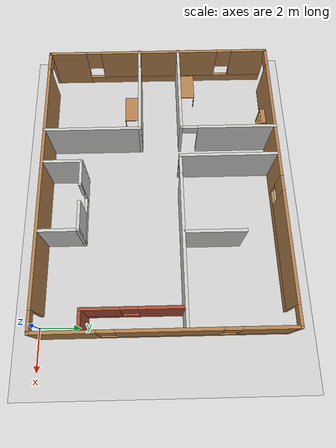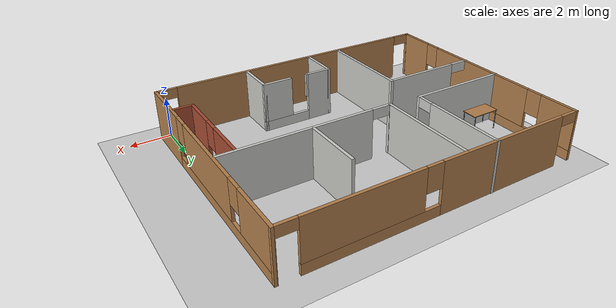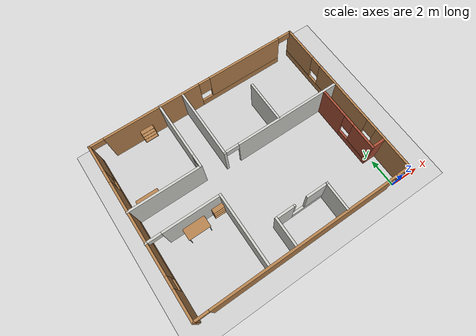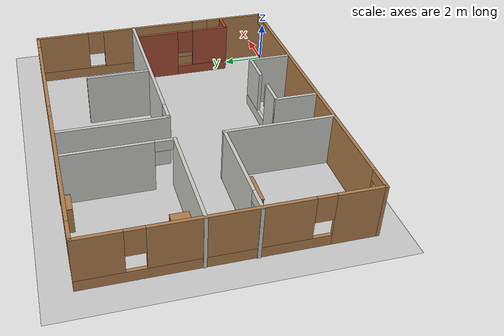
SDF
<sdf version="1.7">
 <world name="office.world">
  <model name="ground_plane">
   <static>1</static>
   <link name="link">
    <collision name="collision">
     <geometry><plane><normal>0 0 1</normal><size>100 100</size></plane></geometry>
     <surface><friction><ode><mu>100</mu><mu2>50</mu2></ode></friction></surface>
    </collision>
    <visual name="visual">
     <cast_shadows>0</cast_shadows>
     <geometry><plane><normal>0 0 1</normal><size>100 100</size></plane></geometry>
     <material>
      <script><uri>file://media/materials/scripts/gazebo.material</uri><name>Gazebo/Grey</name></script>
     </material>
    </visual>
   </link>
  </model>
  <model name="office">
   <pose>-6.85115 6.02821 0 0 -0 0</pose>
   <link name="Wall_18">
    <pose>-0.157794 -5.93469 0 0 -0 0</pose>
    <visual name="Wall_18_Visual_0">
     <pose>-7.42046 0 1.25 0 -0 0</pose>
     <geometry><box><size>0.159078 0.15 2.5</size></box></geometry>
     <material>
      <script><uri>file://media/materials/scripts/gazebo.material</uri><name>Gazebo/Wood</name></script>
      <ambient>1 1 1 1</ambient>
     </material>
     <meta><layer>0</layer></meta>
    </visual>
    <collision name="Wall_18_Collision_0">
     <geometry><box><size>0.159078 0.15 2.5</size></box></geometry>
     <pose>-7.42046 0 1.25 0 -0 0</pose>
    </collision>
    <visual name="Wall_18_Visual_1">
     <pose>0.007174 0 1.25 0 -0 0</pose>
     <geometry><box><size>12.8962 0.15 2.5</size></box></geometry>
     <material>
      <script><uri>file://media/materials/scripts/gazebo.material</uri><name>Gazebo/Wood</name></script>
      <ambient>1 1 1 1</ambient>
     </material>
     <meta><layer>0</layer></meta>
    </visual>
    <collision name="Wall_18_Collision_1">
     <geometry><box><size>12.8962 0.15 2.5</size></box></geometry>
     <pose>0.007174 0 1.25 0 -0 0</pose>
    </collision>
    <visual name="Wall_18_Visual_2">
     <pose>7.42764 0 1.25 0 -0 0</pose>
     <geometry><box><size>0.144729 0.15 2.5</size></box></geometry>
     <material>
      <script><uri>file://media/materials/scripts/gazebo.material</uri><name>Gazebo/Wood</name></script>
      <ambient>1 1 1 1</ambient>
     </material>
     <meta><layer>0</layer></meta>
    </visual>
    <collision name="Wall_18_Collision_2">
     <geometry><box><size>0.144729 0.15 2.5</size></box></geometry>
     <pose>7.42764 0 1.25 0 -0 0</pose>
    </collision>
    <visual name="Wall_18_Visual_3">
     <pose>-6.89092 0 2.25 0 -0 0</pose>
     <geometry><box><size>0.9 0.15 0.5</size></box></geometry>
     <material>
      <script><uri>file://media/materials/scripts/gazebo.material</uri><name>Gazebo/Wood</name></script>
      <ambient>1 1 1 1</ambient>
     </material>
     <meta><layer>0</layer></meta>
    </visual>
    <collision name="Wall_18_Collision_3">
     <geometry><box><size>0.9 0.15 0.5</size></box></geometry>
     <pose>-6.89092 0 2.25 0 -0 0</pose>
    </collision>
    <visual name="Wall_18_Visual_4">
     <pose>6.90527 0 2.25 0 -0 0</pose>
     <geometry><box><size>0.9 0.15 0.5</size></box></geometry>
     <material>
      <script><uri>file://media/materials/scripts/gazebo.material</uri><name>Gazebo/Wood</name></script>
      <ambient>1 1 1 1</ambient>
     </material>
     <meta><layer>0</layer></meta>
    </visual>
    <collision name="Wall_18_Collision_4">
     <geometry><box><size>0.9 0.15 0.5</size></box></geometry>
     <pose>6.90527 0 2.25 0 -0 0</pose>
    </collision>
   </link>
   <link name="Wall_20">
    <pose>7.26721 -0.009693 0 0 -0 1.5708</pose>
    <visual name="Wall_20_Visual_0">
     <pose>-4.48837 0 1.25 0 -0 0</pose>
     <geometry><box><size>3.02326 0.15 2.5</size></box></geometry>
     <material>
      <script><uri>file://media/materials/scripts/gazebo.material</uri><name>Gazebo/Wood</name></script>
      <ambient>1 1 1 1</ambient>
     </material>
     <meta><layer>0</layer></meta>
    </visual>
    <collision name="Wall_20_Collision_0">
     <geometry><box><size>3.02326 0.15 2.5</size></box></geometry>
     <pose>-4.48837 0 1.25 0 -0 0</pose>
    </collision>
    <visual name="Wall_20_Visual_1">
     <pose>1.51163 0 0.25 0 -0 0</pose>
     <geometry><box><size>8.97674 0.15 0.5</size></box></geometry>
     <material>
      <script><uri>file://media/materials/scripts/gazebo.material</uri><name>Gazebo/Wood</name></script>
      <ambient>1 1 1 1</ambient>
     </material>
     <meta><layer>0</layer></meta>
    </visual>
    <collision name="Wall_20_Collision_1">
     <geometry><box><size>8.97674 0.15 0.5</size></box></geometry>
     <pose>1.51163 0 0.25 0 -0 0</pose>
    </collision>
    <visual name="Wall_20_Visual_2">
     <pose>0.202385 0 1.5 0 -0 0</pose>
     <geometry><box><size>4.75824 0.15 2</size></box></geometry>
     <material>
      <script><uri>file://media/materials/scripts/gazebo.material</uri><name>Gazebo/Wood</name></script>
      <ambient>1 1 1 1</ambient>
     </material>
     <meta><layer>0</layer></meta>
    </visual>
    <collision name="Wall_20_Collision_2">
     <geometry><box><size>4.75824 0.15 2</size></box></geometry>
     <pose>0.202385 0 1.5 0 -0 0</pose>
    </collision>
    <visual name="Wall_20_Visual_3">
     <pose>4.69075 0 1.5 0 -0 0</pose>
     <geometry><box><size>2.61849 0.15 2</size></box></geometry>
     <material>
      <script><uri>file://media/materials/scripts/gazebo.material</uri><name>Gazebo/Wood</name></script>
      <ambient>1 1 1 1</ambient>
     </material>
     <meta><layer>0</layer></meta>
    </visual>
    <collision name="Wall_20_Collision_3">
     <geometry><box><size>2.61849 0.15 2</size></box></geometry>
     <pose>4.69075 0 1.5 0 -0 0</pose>
    </collision>
    <visual name="Wall_20_Visual_4">
     <pose>-2.57674 0 1.9 0 -0 0</pose>
     <geometry><box><size>0.8 0.15 1.2</size></box></geometry>
     <material>
      <script><uri>file://media/materials/scripts/gazebo.material</uri><name>Gazebo/Wood</name></script>
      <ambient>1 1 1 1</ambient>
     </material>
     <meta><layer>0</layer></meta>
    </visual>
    <collision name="Wall_20_Collision_4">
     <geometry><box><size>0.8 0.15 1.2</size></box></geometry>
     <pose>-2.57674 0 1.9 0 -0 0</pose>
    </collision>
    <visual name="Wall_20_Visual_5">
     <pose>2.98151 0 1.9 0 -0 0</pose>
     <geometry><box><size>0.8 0.15 1.2</size></box></geometry>
     <material>
      <script><uri>file://media/materials/scripts/gazebo.material</uri><name>Gazebo/Wood</name></script>
      <ambient>1 1 1 1</ambient>
     </material>
     <meta><layer>0</layer></meta>
    </visual>
    <collision name="Wall_20_Collision_5">
     <geometry><box><size>0.8 0.15 1.2</size></box></geometry>
     <pose>2.98151 0 1.9 0 -0 0</pose>
    </collision>
   </link>
   <link name="Wall_22">
    <pose>-7.58279 -0.009693 0 0 -0 1.5708</pose>
    <visual name="Wall_22_Visual_0">
     <pose>-4.97539 0 1.25 0 -0 0</pose>
     <geometry><box><size>2.04922 0.15 2.5</size></box></geometry>
     <material>
      <script><uri>file://media/materials/scripts/gazebo.material</uri><name>Gazebo/Wood</name></script>
      <ambient>1 1 1 1</ambient>
     </material>
     <meta><layer>0</layer></meta>
    </visual>
    <collision name="Wall_22_Collision_0">
     <geometry><box><size>2.04922 0.15 2.5</size></box></geometry>
     <pose>-4.97539 0 1.25 0 -0 0</pose>
    </collision>
    <visual name="Wall_22_Visual_1">
     <pose>1.02461 0 0.25 0 -0 0</pose>
     <geometry><box><size>9.95078 0.15 0.5</size></box></geometry>
     <material>
      <script><uri>file://media/materials/scripts/gazebo.material</uri><name>Gazebo/Wood</name></script>
      <ambient>1 1 1 1</ambient>
     </material>
     <meta><layer>0</layer></meta>
    </visual>
    <collision name="Wall_22_Collision_1">
     <geometry><box><size>9.95078 0.15 0.5</size></box></geometry>
     <pose>1.02461 0 0.25 0 -0 0</pose>
    </collision>
    <visual name="Wall_22_Visual_2">
     <pose>0.053552 0 1.5 0 -0 0</pose>
     <geometry><box><size>6.40865 0.15 2</size></box></geometry>
     <material>
      <script><uri>file://media/materials/scripts/gazebo.material</uri><name>Gazebo/Wood</name></script>
      <ambient>1 1 1 1</ambient>
     </material>
     <meta><layer>0</layer></meta>
    </visual>
    <collision name="Wall_22_Collision_2">
     <geometry><box><size>6.40865 0.15 2</size></box></geometry>
     <pose>0.053552 0 1.5 0 -0 0</pose>
    </collision>
    <visual name="Wall_22_Visual_3">
     <pose>5.02894 0 1.5 0 -0 0</pose>
     <geometry><box><size>1.94212 0.15 2</size></box></geometry>
     <material>
      <script><uri>file://media/materials/scripts/gazebo.material</uri><name>Gazebo/Wood</name></script>
      <ambient>1 1 1 1</ambient>
     </material>
     <meta><layer>0</layer></meta>
    </visual>
    <collision name="Wall_22_Collision_3">
     <geometry><box><size>1.94212 0.15 2</size></box></geometry>
     <pose>5.02894 0 1.5 0 -0 0</pose>
    </collision>
    <visual name="Wall_22_Visual_4">
     <pose>-3.55077 0 1.9 0 -0 0</pose>
     <geometry><box><size>0.8 0.15 1.2</size></box></geometry>
     <material>
      <script><uri>file://media/materials/scripts/gazebo.material</uri><name>Gazebo/Wood</name></script>
      <ambient>1 1 1 1</ambient>
     </material>
     <meta><layer>0</layer></meta>
    </visual>
    <collision name="Wall_22_Collision_4">
     <geometry><box><size>0.8 0.15 1.2</size></box></geometry>
     <pose>-3.55077 0 1.9 0 -0 0</pose>
    </collision>
    <visual name="Wall_22_Visual_5">
     <pose>3.65788 0 1.9 0 -0 0</pose>
     <geometry><box><size>0.8 0.15 1.2</size></box></geometry>
     <material>
      <script><uri>file://media/materials/scripts/gazebo.material</uri><name>Gazebo/Wood</name></script>
      <ambient>1 1 1 1</ambient>
     </material>
     <meta><layer>0</layer></meta>
    </visual>
    <collision name="Wall_22_Collision_5">
     <geometry><box><size>0.8 0.15 1.2</size></box></geometry>
     <pose>3.65788 0 1.9 0 -0 0</pose>
    </collision>
   </link>
   <link name="Wall_24">
    <pose>-0.157794 5.91531 0 0 -0 0</pose>
    <visual name="Wall_24_Visual_0">
     <pose>-7.43614 0 1.25 0 -0 0</pose>
     <geometry><box><size>0.127718 0.15 2.5</size></box></geometry>
     <material>
      <script><uri>file://media/materials/scripts/gazebo.material</uri><name>Gazebo/Wood</name></script>
      <ambient>1 1 1 1</ambient>
     </material>
     <meta><layer>0</layer></meta>
    </visual>
    <collision name="Wall_24_Collision_0">
     <geometry><box><size>0.127718 0.15 2.5</size></box></geometry>
     <pose>-7.43614 0 1.25 0 -0 0</pose>
    </collision>
    <visual name="Wall_24_Visual_1">
     <pose>-3.12232 0 1.25 0 -0 0</pose>
     <geometry><box><size>6.69992 0.15 2.5</size></box></geometry>
     <material>
      <script><uri>file://media/materials/scripts/gazebo.material</uri><name>Gazebo/Wood</name></script>
      <ambient>1 1 1 1</ambient>
     </material>
     <meta><layer>0</layer></meta>
    </visual>
    <collision name="Wall_24_Collision_1">
     <geometry><box><size>6.69992 0.15 2.5</size></box></geometry>
     <pose>-3.12232 0 1.25 0 -0 0</pose>
    </collision>
    <visual name="Wall_24_Visual_2">
     <pose>7.43563 0 1.25 0 -0 0</pose>
     <geometry><box><size>0.128742 0.15 2.5</size></box></geometry>
     <material>
      <script><uri>file://media/materials/scripts/gazebo.material</uri><name>Gazebo/Wood</name></script>
      <ambient>1 1 1 1</ambient>
     </material>
     <meta><layer>0</layer></meta>
    </visual>
    <collision name="Wall_24_Collision_2">
     <geometry><box><size>0.128742 0.15 2.5</size></box></geometry>
     <pose>7.43563 0 1.25 0 -0 0</pose>
    </collision>
    <visual name="Wall_24_Visual_3">
     <pose>3.34945 0 0.25 0 -0 0</pose>
     <geometry><box><size>6.24362 0.15 0.5</size></box></geometry>
     <material>
      <script><uri>file://media/materials/scripts/gazebo.material</uri><name>Gazebo/Wood</name></script>
      <ambient>1 1 1 1</ambient>
     </material>
     <meta><layer>0</layer></meta>
    </visual>
    <collision name="Wall_24_Collision_3">
     <geometry><box><size>6.24362 0.15 0.5</size></box></geometry>
     <pose>3.34945 0 0.25 0 -0 0</pose>
    </collision>
    <visual name="Wall_24_Visual_4">
     <pose>3.74945 0 1.5 0 -0 0</pose>
     <geometry><box><size>5.44362 0.15 2</size></box></geometry>
     <material>
      <script><uri>file://media/materials/scripts/gazebo.material</uri><name>Gazebo/Wood</name></script>
      <ambient>1 1 1 1</ambient>
     </material>
     <meta><layer>0</layer></meta>
    </visual>
    <collision name="Wall_24_Collision_4">
     <geometry><box><size>5.44362 0.15 2</size></box></geometry>
     <pose>3.74945 0 1.5 0 -0 0</pose>
    </collision>
    <visual name="Wall_24_Visual_5">
     <pose>0.62764 0 1.9 0 -0 0</pose>
     <geometry><box><size>0.8 0.15 1.2</size></box></geometry>
     <material>
      <script><uri>file://media/materials/scripts/gazebo.material</uri><name>Gazebo/Wood</name></script>
      <ambient>1 1 1 1</ambient>
     </material>
     <meta><layer>0</layer></meta>
    </visual>
    <collision name="Wall_24_Collision_5">
     <geometry><box><size>0.8 0.15 1.2</size></box></geometry>
     <pose>0.62764 0 1.9 0 -0 0</pose>
    </collision>
    <visual name="Wall_24_Visual_6">
     <pose>-6.92228 0 2.25 0 -0 0</pose>
     <geometry><box><size>0.9 0.15 0.5</size></box></geometry>
     <material>
      <script><uri>file://media/materials/scripts/gazebo.material</uri><name>Gazebo/Wood</name></script>
      <ambient>1 1 1 1</ambient>
     </material>
     <meta><layer>0</layer></meta>
    </visual>
    <collision name="Wall_24_Collision_6">
     <geometry><box><size>0.9 0.15 0.5</size></box></geometry>
     <pose>-6.92228 0 2.25 0 -0 0</pose>
    </collision>
    <visual name="Wall_24_Visual_7">
     <pose>6.92126 0 2.25 0 -0 0</pose>
     <geometry><box><size>0.9 0.15 0.5</size></box></geometry>
     <material>
      <script><uri>file://media/materials/scripts/gazebo.material</uri><name>Gazebo/Wood</name></script>
      <ambient>1 1 1 1</ambient>
     </material>
     <meta><layer>0</layer></meta>
    </visual>
    <collision name="Wall_24_Collision_7">
     <geometry><box><size>0.9 0.15 0.5</size></box></geometry>
     <pose>6.92126 0 2.25 0 -0 0</pose>
    </collision>
   </link>
   <link name="Wall_26">
    <collision name="Wall_26_Collision">
     <geometry><box><size>5 0.15 2.5</size></box></geometry>
     <pose>0 0 1.25 0 -0 0</pose>
    </collision>
    <visual name="Wall_26_Visual">
     <pose>0 0 1.25 0 -0 0</pose>
     <geometry><box><size>5 0.15 2.5</size></box></geometry>
     <material>
      <script><uri>file://media/materials/scripts/gazebo.material</uri><name>Gazebo/CeilingTiled</name></script>
      <ambient>1 1 1 1</ambient>
     </material>
     <meta><layer>0</layer></meta>
    </visual>
    <pose>-2.76199 -3.46401 0 0 -0 1.5708</pose>
   </link>
   <link name="Wall_28">
    <pose>-5.18699 -1.03901 0 0 -0 3.14159</pose>
    <visual name="Wall_28_Visual_0">
     <pose>-0.53426 0 1.25 0 -0 0</pose>
     <geometry><box><size>3.93148 0.15 2.5</size></box></geometry>
     <material>
      <script><uri>file://media/materials/scripts/gazebo.material</uri><name>Gazebo/CeilingTiled</name></script>
      <ambient>1 1 1 1</ambient>
     </material>
     <meta><layer>0</layer></meta>
    </visual>
    <collision name="Wall_28_Collision_0">
     <geometry><box><size>3.93148 0.15 2.5</size></box></geometry>
     <pose>-0.53426 0 1.25 0 -0 0</pose>
    </collision>
    <visual name="Wall_28_Visual_1">
     <pose>2.41574 0 1.25 0 -0 0</pose>
     <geometry><box><size>0.16852 0.15 2.5</size></box></geometry>
     <material>
      <script><uri>file://media/materials/scripts/gazebo.material</uri><name>Gazebo/CeilingTiled</name></script>
      <ambient>1 1 1 1</ambient>
     </material>
     <meta><layer>0</layer></meta>
    </visual>
    <collision name="Wall_28_Collision_1">
     <geometry><box><size>0.16852 0.15 2.5</size></box></geometry>
     <pose>2.41574 0 1.25 0 -0 0</pose>
    </collision>
    <visual name="Wall_28_Visual_2">
     <pose>1.88148 0 2.25 0 -0 0</pose>
     <geometry><box><size>0.9 0.15 0.5</size></box></geometry>
     <material>
      <script><uri>file://media/materials/scripts/gazebo.material</uri><name>Gazebo/CeilingTiled</name></script>
      <ambient>1 1 1 1</ambient>
     </material>
     <meta><layer>0</layer></meta>
    </visual>
    <collision name="Wall_28_Collision_2">
     <geometry><box><size>0.9 0.15 0.5</size></box></geometry>
     <pose>1.88148 0 2.25 0 -0 0</pose>
    </collision>
   </link>
   <link name="Wall_32">
    <pose>-2.75901 3.50969 0 0 -0 -1.5708</pose>
    <visual name="Wall_32_Visual_0">
     <pose>-0.46634 0 1.25 0 -0 0</pose>
     <geometry><box><size>4.06732 0.15 2.5</size></box></geometry>
     <material>
      <script><uri>file://media/materials/scripts/gazebo.material</uri><name>Gazebo/CeilingTiled</name></script>
      <ambient>1 1 1 1</ambient>
     </material>
     <meta><layer>0</layer></meta>
    </visual>
    <collision name="Wall_32_Collision_0">
     <geometry><box><size>4.06732 0.15 2.5</size></box></geometry>
     <pose>-0.46634 0 1.25 0 -0 0</pose>
    </collision>
    <visual name="Wall_32_Visual_1">
     <pose>2.48366 0 1.25 0 -0 0</pose>
     <geometry><box><size>0.032681 0.15 2.5</size></box></geometry>
     <material>
      <script><uri>file://media/materials/scripts/gazebo.material</uri><name>Gazebo/CeilingTiled</name></script>
      <ambient>1 1 1 1</ambient>
     </material>
     <meta><layer>0</layer></meta>
    </visual>
    <collision name="Wall_32_Collision_1">
     <geometry><box><size>0.032681 0.15 2.5</size></box></geometry>
     <pose>2.48366 0 1.25 0 -0 0</pose>
    </collision>
    <visual name="Wall_32_Visual_2">
     <pose>2.01732 0 2.25 0 -0 0</pose>
     <geometry><box><size>0.9 0.15 0.5</size></box></geometry>
     <material>
      <script><uri>file://media/materials/scripts/gazebo.material</uri><name>Gazebo/CeilingTiled</name></script>
      <ambient>1 1 1 1</ambient>
     </material>
     <meta><layer>0</layer></meta>
    </visual>
    <collision name="Wall_32_Collision_2">
     <geometry><box><size>0.9 0.15 0.5</size></box></geometry>
     <pose>2.01732 0 2.25 0 -0 0</pose>
    </collision>
   </link>
   <link name="Wall_34">
    <collision name="Wall_34_Collision">
     <geometry><box><size>5 0.15 2.5</size></box></geometry>
     <pose>0 0 1.25 0 -0 0</pose>
    </collision>
    <visual name="Wall_34_Visual">
     <pose>0 0 1.25 0 -0 0</pose>
     <geometry><box><size>5 0.15 2.5</size></box></geometry>
     <material>
      <script><uri>file://media/materials/scripts/gazebo.material</uri><name>Gazebo/CeilingTiled</name></script>
      <ambient>1 1 1 1</ambient>
     </material>
     <meta><layer>0</layer></meta>
    </visual>
    <pose>-5.18401 1.08469 0 0 -0 3.14159</pose>
   </link>
   <link name="Wall_36">
    <collision name="Wall_36_Collision">
     <geometry><box><size>5 0.15 2.5</size></box></geometry>
     <pose>0 0 1.25 0 -0 0</pose>
    </collision>
    <visual name="Wall_36_Visual">
     <pose>0 0 1.25 0 -0 0</pose>
     <geometry><box><size>5 0.15 2.5</size></box></geometry>
     <material>
      <script><uri>file://media/materials/scripts/gazebo.material</uri><name>Gazebo/CeilingTiled</name></script>
      <ambient>1 1 1 1</ambient>
     </material>
     <meta><layer>0</layer></meta>
    </visual>
    <pose>-1.15206 3.40845 0 0 -0 -1.5708</pose>
   </link>
   <link name="Wall_38">
    <pose>3.02294 0.98345 0 0 -0 0</pose>
    <visual name="Wall_38_Visual_0">
     <pose>-4.16728 0 1.25 0 -0 0</pose>
     <geometry><box><size>0.165448 0.15 2.5</size></box></geometry>
     <material>
      <script><uri>file://media/materials/scripts/gazebo.material</uri><name>Gazebo/CeilingTiled</name></script>
      <ambient>1 1 1 1</ambient>
     </material>
     <meta><layer>0</layer></meta>
    </visual>
    <collision name="Wall_38_Collision_0">
     <geometry><box><size>0.165448 0.15 2.5</size></box></geometry>
     <pose>-4.16728 0 1.25 0 -0 0</pose>
    </collision>
    <visual name="Wall_38_Visual_1">
     <pose>0.532724 0 1.25 0 -0 0</pose>
     <geometry><box><size>7.43455 0.15 2.5</size></box></geometry>
     <material>
      <script><uri>file://media/materials/scripts/gazebo.material</uri><name>Gazebo/CeilingTiled</name></script>
      <ambient>1 1 1 1</ambient>
     </material>
     <meta><layer>0</layer></meta>
    </visual>
    <collision name="Wall_38_Collision_1">
     <geometry><box><size>7.43455 0.15 2.5</size></box></geometry>
     <pose>0.532724 0 1.25 0 -0 0</pose>
    </collision>
    <visual name="Wall_38_Visual_2">
     <pose>-3.63455 0 2.25 0 -0 0</pose>
     <geometry><box><size>0.9 0.15 0.5</size></box></geometry>
     <material>
      <script><uri>file://media/materials/scripts/gazebo.material</uri><name>Gazebo/CeilingTiled</name></script>
      <ambient>1 1 1 1</ambient>
     </material>
     <meta><layer>0</layer></meta>
    </visual>
    <collision name="Wall_38_Collision_2">
     <geometry><box><size>0.9 0.15 0.5</size></box></geometry>
     <pose>-3.63455 0 2.25 0 -0 0</pose>
    </collision>
   </link>
   <link name="Wall_40">
    <collision name="Wall_40_Collision">
     <geometry><box><size>3 0.15 2.5</size></box></geometry>
     <pose>0 0 1.25 0 -0 0</pose>
    </collision>
    <visual name="Wall_40_Visual">
     <pose>0 0 1.25 0 -0 0</pose>
     <geometry><box><size>3 0.15 2.5</size></box></geometry>
     <material>
      <script><uri>file://media/materials/scripts/gazebo.material</uri><name>Gazebo/CeilingTiled</name></script>
      <ambient>1 1 1 1</ambient>
     </material>
     <meta><layer>0</layer></meta>
    </visual>
    <pose>2.85102 2.49115 0 0 -0 1.5708</pose>
   </link>
   <link name="Wall_44">
    <collision name="Wall_44_Collision">
     <geometry><box><size>2 0.15 2.5</size></box></geometry>
     <pose>0 0 1.25 0 -0 0</pose>
    </collision>
    <visual name="Wall_44_Visual">
     <pose>0 0 1.25 0 -0 0</pose>
     <geometry><box><size>2 0.15 2.5</size></box></geometry>
     <material>
      <script><uri>file://media/materials/scripts/gazebo.material</uri><name>Gazebo/CeilingTiled</name></script>
      <ambient>1 1 1 1</ambient>
     </material>
     <meta><layer>0</layer></meta>
    </visual>
    <pose>-0.937305 -4.89788 0 0 -0 1.5708</pose>
   </link>
   <link name="Wall_45">
    <pose>0.862695 -3.97288 0 0 -0 0</pose>
    <visual name="Wall_45_Visual_0">
     <pose>-1.22839 0 1.25 0 -0 0</pose>
     <geometry><box><size>1.29322 0.15 2.5</size></box></geometry>
     <material>
      <script><uri>file://media/materials/scripts/gazebo.material</uri><name>Gazebo/CeilingTiled</name></script>
      <ambient>1 1 1 1</ambient>
     </material>
     <meta><layer>0</layer></meta>
    </visual>
    <collision name="Wall_45_Collision_0">
     <geometry><box><size>1.29322 0.15 2.5</size></box></geometry>
     <pose>-1.22839 0 1.25 0 -0 0</pose>
    </collision>
    <visual name="Wall_45_Visual_1">
     <pose>0.646612 0 0.25 0 -0 0</pose>
     <geometry><box><size>2.45678 0.15 0.5</size></box></geometry>
     <material>
      <script><uri>file://media/materials/scripts/gazebo.material</uri><name>Gazebo/CeilingTiled</name></script>
      <ambient>1 1 1 1</ambient>
     </material>
     <meta><layer>0</layer></meta>
    </visual>
    <collision name="Wall_45_Collision_1">
     <geometry><box><size>2.45678 0.15 0.5</size></box></geometry>
     <pose>0.646612 0 0.25 0 -0 0</pose>
    </collision>
    <visual name="Wall_45_Visual_2">
     <pose>1.09938 0 1.5 0 -0 0</pose>
     <geometry><box><size>1.55124 0.15 2</size></box></geometry>
     <material>
      <script><uri>file://media/materials/scripts/gazebo.material</uri><name>Gazebo/CeilingTiled</name></script>
      <ambient>1 1 1 1</ambient>
     </material>
     <meta><layer>0</layer></meta>
    </visual>
    <collision name="Wall_45_Collision_2">
     <geometry><box><size>1.55124 0.15 2</size></box></geometry>
     <pose>1.09938 0 1.5 0 -0 0</pose>
    </collision>
    <visual name="Wall_45_Visual_3">
     <pose>-0.529009 0 1.9 0 -0 0</pose>
     <geometry><box><size>0.105536 0.15 1.2</size></box></geometry>
     <material>
      <script><uri>file://media/materials/scripts/gazebo.material</uri><name>Gazebo/CeilingTiled</name></script>
      <ambient>1 1 1 1</ambient>
     </material>
     <meta><layer>0</layer></meta>
    </visual>
    <collision name="Wall_45_Collision_3">
     <geometry><box><size>0.105536 0.15 1.2</size></box></geometry>
     <pose>-0.529009 0 1.9 0 -0 0</pose>
    </collision>
   </link>
   <link name="Wall_46">
    <collision name="Wall_46_Collision">
     <geometry><box><size>2 0.15 2.5</size></box></geometry>
     <pose>0 0 1.25 0 -0 0</pose>
    </collision>
    <visual name="Wall_46_Visual">
     <pose>0 0 1.25 0 -0 0</pose>
     <geometry><box><size>2 0.15 2.5</size></box></geometry>
     <material>
      <script><uri>file://media/materials/scripts/gazebo.material</uri><name>Gazebo/CeilingTiled</name></script>
      <ambient>1 1 1 1</ambient>
     </material>
     <meta><layer>0</layer></meta>
    </visual>
    <pose>2.66269 -4.89788 0 0 -0 -1.5708</pose>
   </link>
   <link name="Wall_48">
    <pose>6.30952 -1.43891 0 0 -0 -1.5708</pose>
    <visual name="Wall_48_Visual_0">
     <pose>-1.32383 0 1.25 0 -0 0</pose>
     <geometry><box><size>2.10234 0.15 2.5</size></box></geometry>
     <material>
      <script><uri>file://media/materials/scripts/gazebo.material</uri><name>Gazebo/Bricks</name></script>
      <ambient>1 1 1 1</ambient>
     </material>
     <meta><layer>0</layer></meta>
    </visual>
    <collision name="Wall_48_Collision_0">
     <geometry><box><size>2.10234 0.15 2.5</size></box></geometry>
     <pose>-1.32383 0 1.25 0 -0 0</pose>
    </collision>
    <visual name="Wall_48_Visual_1">
     <pose>1.05117 0 0.25 0 -0 0</pose>
     <geometry><box><size>2.64766 0.15 0.5</size></box></geometry>
     <material>
      <script><uri>file://media/materials/scripts/gazebo.material</uri><name>Gazebo/Bricks</name></script>
      <ambient>1 1 1 1</ambient>
     </material>
     <meta><layer>0</layer></meta>
    </visual>
    <collision name="Wall_48_Collision_1">
     <geometry><box><size>2.64766 0.15 0.5</size></box></geometry>
     <pose>1.05117 0 0.25 0 -0 0</pose>
    </collision>
    <visual name="Wall_48_Visual_2">
     <pose>1.45117 0 1.5 0 -0 0</pose>
     <geometry><box><size>1.84766 0.15 2</size></box></geometry>
     <material>
      <script><uri>file://media/materials/scripts/gazebo.material</uri><name>Gazebo/Bricks</name></script>
      <ambient>1 1 1 1</ambient>
     </material>
     <meta><layer>0</layer></meta>
    </visual>
    <collision name="Wall_48_Collision_2">
     <geometry><box><size>1.84766 0.15 2</size></box></geometry>
     <pose>1.45117 0 1.5 0 -0 0</pose>
    </collision>
    <visual name="Wall_48_Visual_3">
     <pose>0.127335 0 1.9 0 -0 0</pose>
     <geometry><box><size>0.8 0.15 1.2</size></box></geometry>
     <material>
      <script><uri>file://media/materials/scripts/gazebo.material</uri><name>Gazebo/Bricks</name></script>
      <ambient>1 1 1 1</ambient>
     </material>
     <meta><layer>0</layer></meta>
    </visual>
    <collision name="Wall_48_Collision_3">
     <geometry><box><size>0.8 0.15 1.2</size></box></geometry>
     <pose>0.127335 0 1.9 0 -0 0</pose>
    </collision>
   </link>
   <link name="Wall_49">
    <collision name="Wall_49_Collision">
     <geometry><box><size>1 0.15 2.5</size></box></geometry>
     <pose>0 0 1.25 0 -0 0</pose>
    </collision>
    <visual name="Wall_49_Visual">
     <pose>0 0 1.25 0 -0 0</pose>
     <geometry><box><size>1 0.15 2.5</size></box></geometry>
     <material>
      <script><uri>file://media/materials/scripts/gazebo.material</uri><name>Gazebo/Bricks</name></script>
      <ambient>1 1 1 1</ambient>
     </material>
     <meta><layer>0</layer></meta>
    </visual>
    <pose>6.73452 -3.73891 0 0 -0 0</pose>
   </link>
   <static>1</static>
  </model>
  <model name="bookshelf_1">
   <static>1</static>
   <link name="link">
    <inertial><mass>1</mass></inertial>
    <collision name="back">
     <pose>0 0.005 0.6 0 -0 0</pose>
     <geometry><box><size>0.9 0.01 1.2</size></box></geometry>
    </collision>
    <visual name="visual1">
     <pose>0 0.005 0.6 0 -0 0</pose>
     <geometry><box><size>0.9 0.01 1.2</size></box></geometry>
     <material>
      <script><uri>file://media/materials/scripts/gazebo.material</uri><name>Gazebo/Wood</name></script>
     </material>
    </visual>
    <collision name="left_side">
     <pose>0.45 -0.195 0.6 0 -0 0</pose>
     <geometry><box><size>0.02 0.4 1.2</size></box></geometry>
    </collision>
    <visual name="visual2">
     <pose>0.45 -0.195 0.6 0 -0 0</pose>
     <geometry><box><size>0.02 0.4 1.2</size></box></geometry>
     <material>
      <script><uri>file://media/materials/scripts/gazebo.material</uri><name>Gazebo/Wood</name></script>
     </material>
    </visual>
    <collision name="right_side">
     <pose>-0.45 -0.195 0.6 0 -0 0</pose>
     <geometry><box><size>0.02 0.4 1.2</size></box></geometry>
    </collision>
    <visual name="visual3">
     <pose>-0.45 -0.195 0.6 0 -0 0</pose>
     <geometry><box><size>0.02 0.4 1.2</size></box></geometry>
     <material>
      <script><uri>file://media/materials/scripts/gazebo.material</uri><name>Gazebo/Wood</name></script>
     </material>
    </visual>
    <collision name="bottom">
     <pose>0 -0.195 0.03 0 -0 0</pose>
     <geometry><box><size>0.88 0.4 0.06</size></box></geometry>
    </collision>
    <visual name="visual4">
     <pose>0 -0.195 0.03 0 -0 0</pose>
     <geometry><box><size>0.88 0.4 0.06</size></box></geometry>
     <material>
      <script><uri>file://media/materials/scripts/gazebo.material</uri><name>Gazebo/Wood</name></script>
     </material>
    </visual>
    <collision name="top">
     <pose>0 -0.195 1.19 0 -0 0</pose>
     <geometry><box><size>0.88 0.4 0.02</size></box></geometry>
    </collision>
    <visual name="visual5">
     <pose>0 -0.195 1.19 0 -0 0</pose>
     <geometry><box><size>0.88 0.4 0.02</size></box></geometry>
     <material>
      <script><uri>file://media/materials/scripts/gazebo.material</uri><name>Gazebo/Wood</name></script>
     </material>
    </visual>
    <collision name="low_shelf">
     <pose>0 -0.195 0.43 0 -0 0</pose>
     <geometry><box><size>0.88 0.4 0.02</size></box></geometry>
    </collision>
    <visual name="visual6">
     <pose>0 -0.195 0.43 0 -0 0</pose>
     <geometry><box><size>0.88 0.4 0.02</size></box></geometry>
     <material>
      <script><uri>file://media/materials/scripts/gazebo.material</uri><name>Gazebo/Wood</name></script>
     </material>
    </visual>
    <collision name="high_shelf">
     <pose>0 -0.195 0.8 0 -0 0</pose>
     <geometry><box><size>0.88 0.4 0.02</size></box></geometry>
    </collision>
    <visual name="visual7">
     <pose>0 -0.195 0.8 0 -0 0</pose>
     <geometry><box><size>0.88 0.4 0.02</size></box></geometry>
     <material>
      <script><uri>file://media/materials/scripts/gazebo.material</uri><name>Gazebo/Wood</name></script>
     </material>
    </visual>
   </link>
   <pose>-10 5 0 0 -0 0</pose>
  </model>
  <model name="bookshelf_2">
   <static>1</static>
   <link name="link">
    <inertial><mass>1</mass></inertial>
    <collision name="back">
     <pose>0 0.005 0.6 0 -0 0</pose>
     <geometry><box><size>0.9 0.01 1.2</size></box></geometry>
    </collision>
    <visual name="visual1">
     <pose>0 0.005 0.6 0 -0 0</pose>
     <geometry><box><size>0.9 0.01 1.2</size></box></geometry>
     <material>
      <script><uri>file://media/materials/scripts/gazebo.material</uri><name>Gazebo/Wood</name></script>
     </material>
    </visual>
    <collision name="left_side">
     <pose>0.45 -0.195 0.6 0 -0 0</pose>
     <geometry><box><size>0.02 0.4 1.2</size></box></geometry>
    </collision>
    <visual name="visual2">
     <pose>0.45 -0.195 0.6 0 -0 0</pose>
     <geometry><box><size>0.02 0.4 1.2</size></box></geometry>
     <material>
      <script><uri>file://media/materials/scripts/gazebo.material</uri><name>Gazebo/Wood</name></script>
     </material>
    </visual>
    <collision name="right_side">
     <pose>-0.45 -0.195 0.6 0 -0 0</pose>
     <geometry><box><size>0.02 0.4 1.2</size></box></geometry>
    </collision>
    <visual name="visual3">
     <pose>-0.45 -0.195 0.6 0 -0 0</pose>
     <geometry><box><size>0.02 0.4 1.2</size></box></geometry>
     <material>
      <script><uri>file://media/materials/scripts/gazebo.material</uri><name>Gazebo/Wood</name></script>
     </material>
    </visual>
    <collision name="bottom">
     <pose>0 -0.195 0.03 0 -0 0</pose>
     <geometry><box><size>0.88 0.4 0.06</size></box></geometry>
    </collision>
    <visual name="visual4">
     <pose>0 -0.195 0.03 0 -0 0</pose>
     <geometry><box><size>0.88 0.4 0.06</size></box></geometry>
     <material>
      <script><uri>file://media/materials/scripts/gazebo.material</uri><name>Gazebo/Wood</name></script>
     </material>
    </visual>
    <collision name="top">
     <pose>0 -0.195 1.19 0 -0 0</pose>
     <geometry><box><size>0.88 0.4 0.02</size></box></geometry>
    </collision>
    <visual name="visual5">
     <pose>0 -0.195 1.19 0 -0 0</pose>
     <geometry><box><size>0.88 0.4 0.02</size></box></geometry>
     <material>
      <script><uri>file://media/materials/scripts/gazebo.material</uri><name>Gazebo/Wood</name></script>
     </material>
    </visual>
    <collision name="low_shelf">
     <pose>0 -0.195 0.43 0 -0 0</pose>
     <geometry><box><size>0.88 0.4 0.02</size></box></geometry>
    </collision>
    <visual name="visual6">
     <pose>0 -0.195 0.43 0 -0 0</pose>
     <geometry><box><size>0.88 0.4 0.02</size></box></geometry>
     <material>
      <script><uri>file://media/materials/scripts/gazebo.material</uri><name>Gazebo/Wood</name></script>
     </material>
    </visual>
    <collision name="high_shelf">
     <pose>0 -0.195 0.8 0 -0 0</pose>
     <geometry><box><size>0.88 0.4 0.02</size></box></geometry>
    </collision>
    <visual name="visual7">
     <pose>0 -0.195 0.8 0 -0 0</pose>
     <geometry><box><size>0.88 0.4 0.02</size></box></geometry>
     <material>
      <script><uri>file://media/materials/scripts/gazebo.material</uri><name>Gazebo/Wood</name></script>
     </material>
    </visual>
   </link>
   <pose>-11 12 0 0 -0 0</pose>
  </model>
  <model name="table">
   <static>1</static>
   <link name="link">
    <collision name="surface">
     <pose>0 0 1 0 -0 0</pose>
     <geometry><box><size>1.5 0.8 0.03</size></box></geometry>
     <surface><friction><ode><mu>0.6</mu><mu2>0.6</mu2></ode></friction></surface>
    </collision>
    <visual name="visual1">
     <pose>0 0 1 0 -0 0</pose>
     <geometry><box><size>1.5 0.8 0.03</size></box></geometry>
     <material>
      <script><uri>file://media/materials/scripts/gazebo.material</uri><name>Gazebo/Wood</name></script>
     </material>
    </visual>
    <collision name="front_left_leg">
     <pose>0.68 0.38 0.5 0 -0 0</pose>
     <geometry><cylinder><radius>0.02</radius><length>1</length></cylinder></geometry>
    </collision>
    <visual name="front_left_leg">
     <pose>0.68 0.38 0.5 0 -0 0</pose>
     <geometry><cylinder><radius>0.02</radius><length>1</length></cylinder></geometry>
     <material>
      <script><uri>file://media/materials/scripts/gazebo.material</uri><name>Gazebo/Grey</name></script>
     </material>
    </visual>
    <collision name="front_right_leg">
     <pose>0.68 -0.38 0.5 0 -0 0</pose>
     <geometry><cylinder><radius>0.02</radius><length>1</length></cylinder></geometry>
    </collision>
    <visual name="front_right_leg">
     <pose>0.68 -0.38 0.5 0 -0 0</pose>
     <geometry><cylinder><radius>0.02</radius><length>1</length></cylinder></geometry>
     <material>
      <script><uri>file://media/materials/scripts/gazebo.material</uri><name>Gazebo/Grey</name></script>
     </material>
    </visual>
    <collision name="back_right_leg">
     <pose>-0.68 -0.38 0.5 0 -0 0</pose>
     <geometry><cylinder><radius>0.02</radius><length>1</length></cylinder></geometry>
    </collision>
    <visual name="back_right_leg">
     <pose>-0.68 -0.38 0.5 0 -0 0</pose>
     <geometry><cylinder><radius>0.02</radius><length>1</length></cylinder></geometry>
     <material>
      <script><uri>file://media/materials/scripts/gazebo.material</uri><name>Gazebo/Grey</name></script>
     </material>
    </visual>
    <collision name="back_left_leg">
     <pose>-0.68 0.38 0.5 0 -0 0</pose>
     <geometry><cylinder><radius>0.02</radius><length>1</length></cylinder></geometry>
    </collision>
    <visual name="back_left_leg">
     <pose>-0.68 0.38 0.5 0 -0 0</pose>
     <geometry><cylinder><radius>0.02</radius><length>1</length></cylinder></geometry>
     <material>
      <script><uri>file://media/materials/scripts/gazebo.material</uri><name>Gazebo/Grey</name></script>
     </material>
    </visual>
   </link>
   <pose>-11.7282 4.53053 0 0 -0 0</pose>
  </model>
  <model name="table_0">
   <static>1</static>
   <link name="link">
    <collision name="surface">
     <pose>0 0 1 0 -0 0</pose>
     <geometry><box><size>1.5 0.8 0.03</size></box></geometry>
     <surface><friction><ode><mu>0.6</mu><mu2>0.6</mu2></ode></friction></surface>
    </collision>
    <visual name="visual1">
     <pose>0 0 1 0 -0 0</pose>
     <geometry><box><size>1.5 0.8 0.03</size></box></geometry>
     <material>
      <script><uri>file://media/materials/scripts/gazebo.material</uri><name>Gazebo/Wood</name></script>
     </material>
    </visual>
    <collision name="front_left_leg">
     <pose>0.68 0.38 0.5 0 -0 0</pose>
     <geometry><cylinder><radius>0.02</radius><length>1</length></cylinder></geometry>
    </collision>
    <visual name="front_left_leg">
     <pose>0.68 0.38 0.5 0 -0 0</pose>
     <geometry><cylinder><radius>0.02</radius><length>1</length></cylinder></geometry>
     <material>
      <script><uri>file://media/materials/scripts/gazebo.material</uri><name>Gazebo/Grey</name></script>
     </material>
    </visual>
    <collision name="front_right_leg">
     <pose>0.68 -0.38 0.5 0 -0 0</pose>
     <geometry><cylinder><radius>0.02</radius><length>1</length></cylinder></geometry>
    </collision>
    <visual name="front_right_leg">
     <pose>0.68 -0.38 0.5 0 -0 0</pose>
     <geometry><cylinder><radius>0.02</radius><length>1</length></cylinder></geometry>
     <material>
      <script><uri>file://media/materials/scripts/gazebo.material</uri><name>Gazebo/Grey</name></script>
     </material>
    </visual>
    <collision name="back_right_leg">
     <pose>-0.68 -0.38 0.5 0 -0 0</pose>
     <geometry><cylinder><radius>0.02</radius><length>1</length></cylinder></geometry>
    </collision>
    <visual name="back_right_leg">
     <pose>-0.68 -0.38 0.5 0 -0 0</pose>
     <geometry><cylinder><radius>0.02</radius><length>1</length></cylinder></geometry>
     <material>
      <script><uri>file://media/materials/scripts/gazebo.material</uri><name>Gazebo/Grey</name></script>
     </material>
    </visual>
    <collision name="back_left_leg">
     <pose>-0.68 0.38 0.5 0 -0 0</pose>
     <geometry><cylinder><radius>0.02</radius><length>1</length></cylinder></geometry>
    </collision>
    <visual name="back_left_leg">
     <pose>-0.68 0.38 0.5 0 -0 0</pose>
     <geometry><cylinder><radius>0.02</radius><length>1</length></cylinder></geometry>
     <material>
      <script><uri>file://media/materials/scripts/gazebo.material</uri><name>Gazebo/Grey</name></script>
     </material>
    </visual>
   </link>
   <pose>-13.1759 7.62026 0 0 -0 0</pose>
  </model>
 </world>
</sdf>
